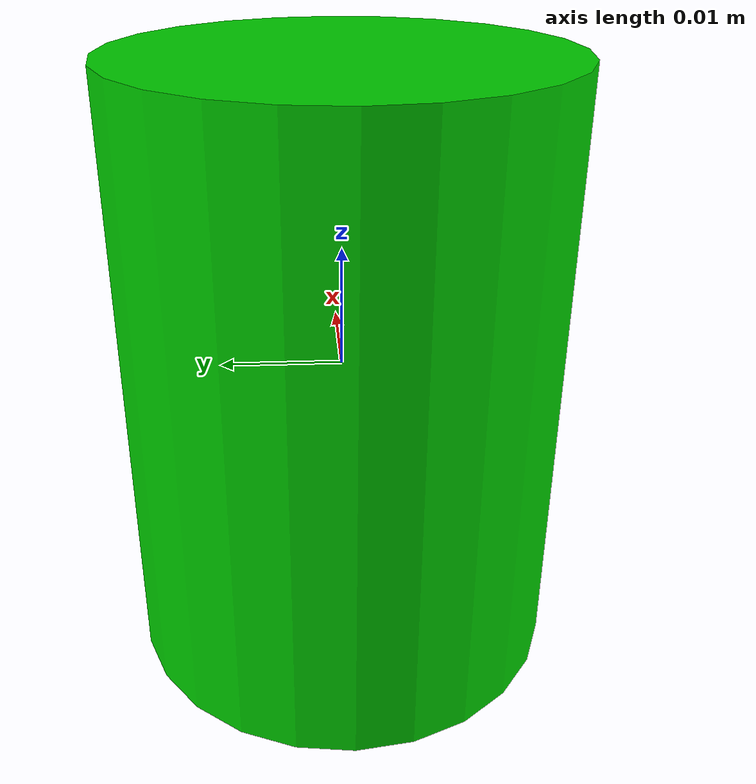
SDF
<?xml version="1.0" ?>
<sdf version="1.9">
  <model name="distractor_cylinder">
    <link name="link">
      <inertial><mass>0.04</mass></inertial>
      <collision name="collision">
        <geometry><cylinder><radius>0.018</radius><length>0.05</length></cylinder></geometry>
      </collision>
      <visual name="visual">
        <geometry><cylinder><radius>0.018</radius><length>0.05</length></cylinder></geometry>
        <material><ambient>0 0.8 0 1</ambient><diffuse>0 0.8 0 1</diffuse></material>
      </visual>
    </link>
  </model>
</sdf>
